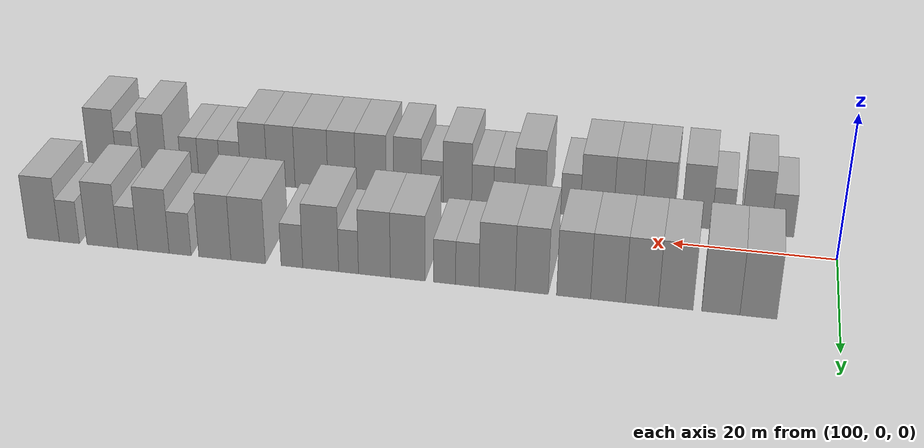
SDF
<sdf version="1.6">
 <world name="default">
  <model name="building_26">
   <static>1</static>
   <pose>109.2234 9.5000 0 0.000000 0.000000 1.570796</pose>
   <link name="link">
    <pose>0 0 4.50 0 0 0</pose>
    <collision name="collision"><geometry><box><size>10.0000 4.2293 9.0000</size></box></geometry></collision>
    <visual name="visual">
     <cast_shadows>0</cast_shadows>
     <geometry><box><size>10.0000 4.2293 9.0000</size></box></geometry>
     <material>
      <script>
       <uri>model://HANNAS_wall/materials/scripts</uri>
       <uri>model://HANNAS_wall/materials/textures</uri>
       <name>vrc/HANNAS_wall</name>
      </script>
     </material>
    </visual>
   </link>
  </model>
  <model name="building_27">
   <static>1</static>
   <pose>113.5331 9.5000 0 0.000000 0.000000 1.570796</pose>
   <link name="link">
    <pose>0 0 4.50 0 0 0</pose>
    <collision name="collision"><geometry><box><size>10.0000 4.3900 9.0000</size></box></geometry></collision>
    <visual name="visual">
     <cast_shadows>0</cast_shadows>
     <geometry><box><size>10.0000 4.3900 9.0000</size></box></geometry>
     <material>
      <script>
       <uri>model://HANNAS_wall/materials/scripts</uri>
       <uri>model://HANNAS_wall/materials/textures</uri>
       <name>vrc/HANNAS_wall</name>
      </script>
     </material>
    </visual>
   </link>
  </model>
  <model name="building_28">
   <static>1</static>
   <pose>118.7385 9.5000 0 0.000000 0.000000 1.570796</pose>
   <link name="link">
    <pose>0 0 4.50 0 0 0</pose>
    <collision name="collision"><geometry><box><size>10.0000 4.0208 9.0000</size></box></geometry></collision>
    <visual name="visual">
     <cast_shadows>0</cast_shadows>
     <geometry><box><size>10.0000 4.0208 9.0000</size></box></geometry>
     <material>
      <script>
       <uri>model://HANNAS_wall/materials/scripts</uri>
       <uri>model://HANNAS_wall/materials/textures</uri>
       <name>vrc/HANNAS_wall</name>
      </script>
     </material>
    </visual>
   </link>
  </model>
  <model name="building_29">
   <static>1</static>
   <pose>122.6874 9.5000 0 0.000000 0.000000 1.570796</pose>
   <link name="link">
    <pose>0 0 4.50 0 0 0</pose>
    <collision name="collision"><geometry><box><size>10.0000 3.8772 9.0000</size></box></geometry></collision>
    <visual name="visual">
     <cast_shadows>0</cast_shadows>
     <geometry><box><size>10.0000 3.8772 9.0000</size></box></geometry>
     <material>
      <script>
       <uri>model://HANNAS_wall/materials/scripts</uri>
       <uri>model://HANNAS_wall/materials/textures</uri>
       <name>vrc/HANNAS_wall</name>
      </script>
     </material>
    </visual>
   </link>
  </model>
  <model name="building_30">
   <static>1</static>
   <pose>126.6650 9.5000 0 0.000000 0.000000 1.570796</pose>
   <link name="link">
    <pose>0 0 4.50 0 0 0</pose>
    <collision name="collision"><geometry><box><size>10.0000 4.0779 9.0000</size></box></geometry></collision>
    <visual name="visual">
     <cast_shadows>0</cast_shadows>
     <geometry><box><size>10.0000 4.0779 9.0000</size></box></geometry>
     <material>
      <script>
       <uri>model://HANNAS_wall/materials/scripts</uri>
       <uri>model://HANNAS_wall/materials/textures</uri>
       <name>vrc/HANNAS_wall</name>
      </script>
     </material>
    </visual>
   </link>
  </model>
  <model name="building_31">
   <static>1</static>
   <pose>130.7236 9.5000 0 0.000000 0.000000 1.570796</pose>
   <link name="link">
    <pose>0 0 4.50 0 0 0</pose>
    <collision name="collision"><geometry><box><size>10.0000 4.0392 9.0000</size></box></geometry></collision>
    <visual name="visual">
     <cast_shadows>0</cast_shadows>
     <geometry><box><size>10.0000 4.0392 9.0000</size></box></geometry>
     <material>
      <script>
       <uri>model://HANNAS_wall/materials/scripts</uri>
       <uri>model://HANNAS_wall/materials/textures</uri>
       <name>vrc/HANNAS_wall</name>
      </script>
     </material>
    </visual>
   </link>
  </model>
  <model name="building_32">
   <static>1</static>
   <pose>135.7183 9.5000 0 0.000000 0.000000 1.570796</pose>
   <link name="link">
    <pose>0 0 4.50 0 0 0</pose>
    <collision name="collision"><geometry><box><size>10.0000 3.9504 9.0000</size></box></geometry></collision>
    <visual name="visual">
     <cast_shadows>0</cast_shadows>
     <geometry><box><size>10.0000 3.9504 9.0000</size></box></geometry>
     <material>
      <script>
       <uri>model://HANNAS_wall/materials/scripts</uri>
       <uri>model://HANNAS_wall/materials/textures</uri>
       <name>vrc/HANNAS_wall</name>
      </script>
     </material>
    </visual>
   </link>
  </model>
  <model name="building_33">
   <static>1</static>
   <pose>139.8712 9.5000 0 0.000000 0.000000 1.570796</pose>
   <link name="link">
    <pose>0 0 4.50 0 0 0</pose>
    <collision name="collision"><geometry><box><size>10.0000 4.3553 9.0000</size></box></geometry></collision>
    <visual name="visual">
     <cast_shadows>0</cast_shadows>
     <geometry><box><size>10.0000 4.3553 9.0000</size></box></geometry>
     <material>
      <script>
       <uri>model://HANNAS_wall/materials/scripts</uri>
       <uri>model://HANNAS_wall/materials/textures</uri>
       <name>vrc/HANNAS_wall</name>
      </script>
     </material>
    </visual>
   </link>
  </model>
  <model name="building_34">
   <static>1</static>
   <pose>143.4770 9.5000 0 0.000000 0.000000 1.570796</pose>
   <link name="link">
    <pose>0 0 3.00 0 0 0</pose>
    <collision name="collision"><geometry><box><size>10.0000 2.8562 6.0000</size></box></geometry></collision>
    <visual name="visual">
     <cast_shadows>0</cast_shadows>
     <geometry><box><size>10.0000 2.8562 6.0000</size></box></geometry>
     <material>
      <script>
       <uri>model://HANNAS_wall/materials/scripts</uri>
       <uri>model://HANNAS_wall/materials/textures</uri>
       <name>vrc/HANNAS_wall</name>
      </script>
     </material>
    </visual>
   </link>
  </model>
  <model name="building_35">
   <static>1</static>
   <pose>146.2581 9.5000 0 0.000000 0.000000 1.570796</pose>
   <link name="link">
    <pose>0 0 3.00 0 0 0</pose>
    <collision name="collision"><geometry><box><size>10.0000 2.7060 6.0000</size></box></geometry></collision>
    <visual name="visual">
     <cast_shadows>0</cast_shadows>
     <geometry><box><size>10.0000 2.7060 6.0000</size></box></geometry>
     <material>
      <script>
       <uri>model://HANNAS_wall/materials/scripts</uri>
       <uri>model://HANNAS_wall/materials/textures</uri>
       <name>vrc/HANNAS_wall</name>
      </script>
     </material>
    </visual>
   </link>
  </model>
  <model name="building_36">
   <static>1</static>
   <pose>150.7458 9.5000 0 0.000000 0.000000 1.570796</pose>
   <link name="link">
    <pose>0 0 4.50 0 0 0</pose>
    <collision name="collision"><geometry><box><size>10.0000 4.2693 9.0000</size></box></geometry></collision>
    <visual name="visual">
     <cast_shadows>0</cast_shadows>
     <geometry><box><size>10.0000 4.2693 9.0000</size></box></geometry>
     <material>
      <script>
       <uri>model://HANNAS_wall/materials/scripts</uri>
       <uri>model://HANNAS_wall/materials/textures</uri>
       <name>vrc/HANNAS_wall</name>
      </script>
     </material>
    </visual>
   </link>
  </model>
  <model name="building_37">
   <static>1</static>
   <pose>154.8557 9.5000 0 0.000000 0.000000 1.570796</pose>
   <link name="link">
    <pose>0 0 4.50 0 0 0</pose>
    <collision name="collision"><geometry><box><size>10.0000 3.9506 9.0000</size></box></geometry></collision>
    <visual name="visual">
     <cast_shadows>0</cast_shadows>
     <geometry><box><size>10.0000 3.9506 9.0000</size></box></geometry>
     <material>
      <script>
       <uri>model://HANNAS_wall/materials/scripts</uri>
       <uri>model://HANNAS_wall/materials/textures</uri>
       <name>vrc/HANNAS_wall</name>
      </script>
     </material>
    </visual>
   </link>
  </model>
  <model name="building_38">
   <static>1</static>
   <pose>158.0639 9.5000 0 0.000000 0.000000 1.570796</pose>
   <link name="link">
    <pose>0 0 3.00 0 0 0</pose>
    <collision name="collision"><geometry><box><size>10.0000 2.4656 6.0000</size></box></geometry></collision>
    <visual name="visual">
     <cast_shadows>0</cast_shadows>
     <geometry><box><size>10.0000 2.4656 6.0000</size></box></geometry>
     <material>
      <script>
       <uri>model://HANNAS_wall/materials/scripts</uri>
       <uri>model://HANNAS_wall/materials/textures</uri>
       <name>vrc/HANNAS_wall</name>
      </script>
     </material>
    </visual>
   </link>
  </model>
  <model name="building_39">
   <static>1</static>
   <pose>161.5466 9.5000 0 0.000000 0.000000 1.570796</pose>
   <link name="link">
    <pose>0 0 4.50 0 0 0</pose>
    <collision name="collision"><geometry><box><size>10.0000 4.4998 9.0000</size></box></geometry></collision>
    <visual name="visual">
     <cast_shadows>0</cast_shadows>
     <geometry><box><size>10.0000 4.4998 9.0000</size></box></geometry>
     <material>
      <script>
       <uri>model://HANNAS_wall/materials/scripts</uri>
       <uri>model://HANNAS_wall/materials/textures</uri>
       <name>vrc/HANNAS_wall</name>
      </script>
     </material>
    </visual>
   </link>
  </model>
  <model name="building_40">
   <static>1</static>
   <pose>165.1599 9.5000 0 0.000000 0.000000 1.570796</pose>
   <link name="link">
    <pose>0 0 3.00 0 0 0</pose>
    <collision name="collision"><geometry><box><size>10.0000 2.7268 6.0000</size></box></geometry></collision>
    <visual name="visual">
     <cast_shadows>0</cast_shadows>
     <geometry><box><size>10.0000 2.7268 6.0000</size></box></geometry>
     <material>
      <script>
       <uri>model://HANNAS_wall/materials/scripts</uri>
       <uri>model://HANNAS_wall/materials/textures</uri>
       <name>vrc/HANNAS_wall</name>
      </script>
     </material>
    </visual>
   </link>
  </model>
  <model name="building_41">
   <static>1</static>
   <pose>170.7164 9.5000 0 0.000000 0.000000 1.570796</pose>
   <link name="link">
    <pose>0 0 4.50 0 0 0</pose>
    <collision name="collision"><geometry><box><size>10.0000 4.3862 9.0000</size></box></geometry></collision>
    <visual name="visual">
     <cast_shadows>0</cast_shadows>
     <geometry><box><size>10.0000 4.3862 9.0000</size></box></geometry>
     <material>
      <script>
       <uri>model://HANNAS_wall/materials/scripts</uri>
       <uri>model://HANNAS_wall/materials/textures</uri>
       <name>vrc/HANNAS_wall</name>
      </script>
     </material>
    </visual>
   </link>
  </model>
  <model name="building_42">
   <static>1</static>
   <pose>174.9634 9.5000 0 0.000000 0.000000 1.570796</pose>
   <link name="link">
    <pose>0 0 4.50 0 0 0</pose>
    <collision name="collision"><geometry><box><size>10.0000 4.1078 9.0000</size></box></geometry></collision>
    <visual name="visual">
     <cast_shadows>0</cast_shadows>
     <geometry><box><size>10.0000 4.1078 9.0000</size></box></geometry>
     <material>
      <script>
       <uri>model://HANNAS_wall/materials/scripts</uri>
       <uri>model://HANNAS_wall/materials/textures</uri>
       <name>vrc/HANNAS_wall</name>
      </script>
     </material>
    </visual>
   </link>
  </model>
  <model name="building_43">
   <static>1</static>
   <pose>179.4335 9.5000 0 0.000000 0.000000 1.570796</pose>
   <link name="link">
    <pose>0 0 3.00 0 0 0</pose>
    <collision name="collision"><geometry><box><size>10.0000 2.8324 6.0000</size></box></geometry></collision>
    <visual name="visual">
     <cast_shadows>0</cast_shadows>
     <geometry><box><size>10.0000 2.8324 6.0000</size></box></geometry>
     <material>
      <script>
       <uri>model://HANNAS_wall/materials/scripts</uri>
       <uri>model://HANNAS_wall/materials/textures</uri>
       <name>vrc/HANNAS_wall</name>
      </script>
     </material>
    </visual>
   </link>
  </model>
  <model name="building_44">
   <static>1</static>
   <pose>182.8956 9.5000 0 0.000000 0.000000 1.570796</pose>
   <link name="link">
    <pose>0 0 4.50 0 0 0</pose>
    <collision name="collision"><geometry><box><size>10.0000 4.0918 9.0000</size></box></geometry></collision>
    <visual name="visual">
     <cast_shadows>0</cast_shadows>
     <geometry><box><size>10.0000 4.0918 9.0000</size></box></geometry>
     <material>
      <script>
       <uri>model://HANNAS_wall/materials/scripts</uri>
       <uri>model://HANNAS_wall/materials/textures</uri>
       <name>vrc/HANNAS_wall</name>
      </script>
     </material>
    </visual>
   </link>
  </model>
  <model name="building_45">
   <static>1</static>
   <pose>186.2342 9.5000 0 0.000000 0.000000 1.570796</pose>
   <link name="link">
    <pose>0 0 3.00 0 0 0</pose>
    <collision name="collision"><geometry><box><size>10.0000 2.5854 6.0000</size></box></geometry></collision>
    <visual name="visual">
     <cast_shadows>0</cast_shadows>
     <geometry><box><size>10.0000 2.5854 6.0000</size></box></geometry>
     <material>
      <script>
       <uri>model://HANNAS_wall/materials/scripts</uri>
       <uri>model://HANNAS_wall/materials/textures</uri>
       <name>vrc/HANNAS_wall</name>
      </script>
     </material>
    </visual>
   </link>
  </model>
  <model name="building_46">
   <static>1</static>
   <pose>189.5580 9.5000 0 0.000000 0.000000 1.570796</pose>
   <link name="link">
    <pose>0 0 4.50 0 0 0</pose>
    <collision name="collision"><geometry><box><size>10.0000 4.0622 9.0000</size></box></geometry></collision>
    <visual name="visual">
     <cast_shadows>0</cast_shadows>
     <geometry><box><size>10.0000 4.0622 9.0000</size></box></geometry>
     <material>
      <script>
       <uri>model://HANNAS_wall/materials/scripts</uri>
       <uri>model://HANNAS_wall/materials/textures</uri>
       <name>vrc/HANNAS_wall</name>
      </script>
     </material>
    </visual>
   </link>
  </model>
  <model name="building_47">
   <static>1</static>
   <pose>193.9170 9.5000 0 0.000000 0.000000 1.570796</pose>
   <link name="link">
    <pose>0 0 3.00 0 0 0</pose>
    <collision name="collision"><geometry><box><size>10.0000 2.6556 6.0000</size></box></geometry></collision>
    <visual name="visual">
     <cast_shadows>0</cast_shadows>
     <geometry><box><size>10.0000 2.6556 6.0000</size></box></geometry>
     <material>
      <script>
       <uri>model://HANNAS_wall/materials/scripts</uri>
       <uri>model://HANNAS_wall/materials/textures</uri>
       <name>vrc/HANNAS_wall</name>
      </script>
     </material>
    </visual>
   </link>
  </model>
  <model name="building_48">
   <static>1</static>
   <pose>197.3718 9.5000 0 0.000000 0.000000 1.570796</pose>
   <link name="link">
    <pose>0 0 4.50 0 0 0</pose>
    <collision name="collision"><geometry><box><size>10.0000 4.2540 9.0000</size></box></geometry></collision>
    <visual name="visual">
     <cast_shadows>0</cast_shadows>
     <geometry><box><size>10.0000 4.2540 9.0000</size></box></geometry>
     <material>
      <script>
       <uri>model://HANNAS_wall/materials/scripts</uri>
       <uri>model://HANNAS_wall/materials/textures</uri>
       <name>vrc/HANNAS_wall</name>
      </script>
     </material>
    </visual>
   </link>
  </model>
  <model name="building_72">
   <static>1</static>
   <pose>106.6339 -9.5000 0 0.000000 0.000000 1.570796</pose>
   <link name="link">
    <pose>0 0 3.00 0 0 0</pose>
    <collision name="collision"><geometry><box><size>10.0000 2.8440 6.0000</size></box></geometry></collision>
    <visual name="visual">
     <cast_shadows>0</cast_shadows>
     <geometry><box><size>10.0000 2.8440 6.0000</size></box></geometry>
     <material>
      <script>
       <uri>model://HANNAS_wall/materials/scripts</uri>
       <uri>model://HANNAS_wall/materials/textures</uri>
       <name>vrc/HANNAS_wall</name>
      </script>
     </material>
    </visual>
   </link>
  </model>
  <model name="building_73">
   <static>1</static>
   <pose>109.8941 -9.5000 0 0.000000 0.000000 1.570796</pose>
   <link name="link">
    <pose>0 0 4.50 0 0 0</pose>
    <collision name="collision"><geometry><box><size>10.0000 3.6765 9.0000</size></box></geometry></collision>
    <visual name="visual">
     <cast_shadows>0</cast_shadows>
     <geometry><box><size>10.0000 3.6765 9.0000</size></box></geometry>
     <material>
      <script>
       <uri>model://HANNAS_wall/materials/scripts</uri>
       <uri>model://HANNAS_wall/materials/textures</uri>
       <name>vrc/HANNAS_wall</name>
      </script>
     </material>
    </visual>
   </link>
  </model>
  <model name="building_74">
   <static>1</static>
   <pose>114.0905 -9.5000 0 0.000000 0.000000 1.570796</pose>
   <link name="link">
    <pose>0 0 3.00 0 0 0</pose>
    <collision name="collision"><geometry><box><size>10.0000 2.7162 6.0000</size></box></geometry></collision>
    <visual name="visual">
     <cast_shadows>0</cast_shadows>
     <geometry><box><size>10.0000 2.7162 6.0000</size></box></geometry>
     <material>
      <script>
       <uri>model://HANNAS_wall/materials/scripts</uri>
       <uri>model://HANNAS_wall/materials/textures</uri>
       <name>vrc/HANNAS_wall</name>
      </script>
     </material>
    </visual>
   </link>
  </model>
  <model name="building_75">
   <static>1</static>
   <pose>117.3584 -9.5000 0 0.000000 0.000000 1.570796</pose>
   <link name="link">
    <pose>0 0 4.50 0 0 0</pose>
    <collision name="collision"><geometry><box><size>10.0000 3.8197 9.0000</size></box></geometry></collision>
    <visual name="visual">
     <cast_shadows>0</cast_shadows>
     <geometry><box><size>10.0000 3.8197 9.0000</size></box></geometry>
     <material>
      <script>
       <uri>model://HANNAS_wall/materials/scripts</uri>
       <uri>model://HANNAS_wall/materials/textures</uri>
       <name>vrc/HANNAS_wall</name>
      </script>
     </material>
    </visual>
   </link>
  </model>
  <model name="building_76">
   <static>1</static>
   <pose>122.2385 -9.5000 0 0.000000 0.000000 1.570796</pose>
   <link name="link">
    <pose>0 0 4.50 0 0 0</pose>
    <collision name="collision"><geometry><box><size>10.0000 3.9403 9.0000</size></box></geometry></collision>
    <visual name="visual">
     <cast_shadows>0</cast_shadows>
     <geometry><box><size>10.0000 3.9403 9.0000</size></box></geometry>
     <material>
      <script>
       <uri>model://HANNAS_wall/materials/scripts</uri>
       <uri>model://HANNAS_wall/materials/textures</uri>
       <name>vrc/HANNAS_wall</name>
      </script>
     </material>
    </visual>
   </link>
  </model>
  <model name="building_77">
   <static>1</static>
   <pose>126.0311 -9.5000 0 0.000000 0.000000 1.570796</pose>
   <link name="link">
    <pose>0 0 4.50 0 0 0</pose>
    <collision name="collision"><geometry><box><size>10.0000 3.6449 9.0000</size></box></geometry></collision>
    <visual name="visual">
     <cast_shadows>0</cast_shadows>
     <geometry><box><size>10.0000 3.6449 9.0000</size></box></geometry>
     <material>
      <script>
       <uri>model://HANNAS_wall/materials/scripts</uri>
       <uri>model://HANNAS_wall/materials/textures</uri>
       <name>vrc/HANNAS_wall</name>
      </script>
     </material>
    </visual>
   </link>
  </model>
  <model name="building_78">
   <static>1</static>
   <pose>129.9895 -9.5000 0 0.000000 0.000000 1.570796</pose>
   <link name="link">
    <pose>0 0 4.50 0 0 0</pose>
    <collision name="collision"><geometry><box><size>10.0000 4.2720 9.0000</size></box></geometry></collision>
    <visual name="visual">
     <cast_shadows>0</cast_shadows>
     <geometry><box><size>10.0000 4.2720 9.0000</size></box></geometry>
     <material>
      <script>
       <uri>model://HANNAS_wall/materials/scripts</uri>
       <uri>model://HANNAS_wall/materials/textures</uri>
       <name>vrc/HANNAS_wall</name>
      </script>
     </material>
    </visual>
   </link>
  </model>
  <model name="building_79">
   <static>1</static>
   <pose>133.4036 -9.5000 0 0.000000 0.000000 1.570796</pose>
   <link name="link">
    <pose>0 0 3.00 0 0 0</pose>
    <collision name="collision"><geometry><box><size>10.0000 2.5561 6.0000</size></box></geometry></collision>
    <visual name="visual">
     <cast_shadows>0</cast_shadows>
     <geometry><box><size>10.0000 2.5561 6.0000</size></box></geometry>
     <material>
      <script>
       <uri>model://HANNAS_wall/materials/scripts</uri>
       <uri>model://HANNAS_wall/materials/textures</uri>
       <name>vrc/HANNAS_wall</name>
      </script>
     </material>
    </visual>
   </link>
  </model>
  <model name="building_80">
   <static>1</static>
   <pose>138.6891 -9.5000 0 0.000000 0.000000 1.570796</pose>
   <link name="link">
    <pose>0 0 4.50 0 0 0</pose>
    <collision name="collision"><geometry><box><size>10.0000 4.0150 9.0000</size></box></geometry></collision>
    <visual name="visual">
     <cast_shadows>0</cast_shadows>
     <geometry><box><size>10.0000 4.0150 9.0000</size></box></geometry>
     <material>
      <script>
       <uri>model://HANNAS_wall/materials/scripts</uri>
       <uri>model://HANNAS_wall/materials/textures</uri>
       <name>vrc/HANNAS_wall</name>
      </script>
     </material>
    </visual>
   </link>
  </model>
  <model name="building_81">
   <static>1</static>
   <pose>142.0562 -9.5000 0 0.000000 0.000000 1.570796</pose>
   <link name="link">
    <pose>0 0 3.00 0 0 0</pose>
    <collision name="collision"><geometry><box><size>10.0000 2.7190 6.0000</size></box></geometry></collision>
    <visual name="visual">
     <cast_shadows>0</cast_shadows>
     <geometry><box><size>10.0000 2.7190 6.0000</size></box></geometry>
     <material>
      <script>
       <uri>model://HANNAS_wall/materials/scripts</uri>
       <uri>model://HANNAS_wall/materials/textures</uri>
       <name>vrc/HANNAS_wall</name>
      </script>
     </material>
    </visual>
   </link>
  </model>
  <model name="building_82">
   <static>1</static>
   <pose>144.8337 -9.5000 0 0.000000 0.000000 1.570796</pose>
   <link name="link">
    <pose>0 0 3.00 0 0 0</pose>
    <collision name="collision"><geometry><box><size>10.0000 2.8360 6.0000</size></box></geometry></collision>
    <visual name="visual">
     <cast_shadows>0</cast_shadows>
     <geometry><box><size>10.0000 2.8360 6.0000</size></box></geometry>
     <material>
      <script>
       <uri>model://HANNAS_wall/materials/scripts</uri>
       <uri>model://HANNAS_wall/materials/textures</uri>
       <name>vrc/HANNAS_wall</name>
      </script>
     </material>
    </visual>
   </link>
  </model>
  <model name="building_83">
   <static>1</static>
   <pose>148.1437 -9.5000 0 0.000000 0.000000 1.570796</pose>
   <link name="link">
    <pose>0 0 4.50 0 0 0</pose>
    <collision name="collision"><geometry><box><size>10.0000 3.7840 9.0000</size></box></geometry></collision>
    <visual name="visual">
     <cast_shadows>0</cast_shadows>
     <geometry><box><size>10.0000 3.7840 9.0000</size></box></geometry>
     <material>
      <script>
       <uri>model://HANNAS_wall/materials/scripts</uri>
       <uri>model://HANNAS_wall/materials/textures</uri>
       <name>vrc/HANNAS_wall</name>
      </script>
     </material>
    </visual>
   </link>
  </model>
  <model name="building_84">
   <static>1</static>
   <pose>151.4761 -9.5000 0 0.000000 0.000000 1.570796</pose>
   <link name="link">
    <pose>0 0 3.00 0 0 0</pose>
    <collision name="collision"><geometry><box><size>10.0000 2.8807 6.0000</size></box></geometry></collision>
    <visual name="visual">
     <cast_shadows>0</cast_shadows>
     <geometry><box><size>10.0000 2.8807 6.0000</size></box></geometry>
     <material>
      <script>
       <uri>model://HANNAS_wall/materials/scripts</uri>
       <uri>model://HANNAS_wall/materials/textures</uri>
       <name>vrc/HANNAS_wall</name>
      </script>
     </material>
    </visual>
   </link>
  </model>
  <model name="building_85">
   <static>1</static>
   <pose>154.7577 -9.5000 0 0.000000 0.000000 1.570796</pose>
   <link name="link">
    <pose>0 0 4.50 0 0 0</pose>
    <collision name="collision"><geometry><box><size>10.0000 3.6824 9.0000</size></box></geometry></collision>
    <visual name="visual">
     <cast_shadows>0</cast_shadows>
     <geometry><box><size>10.0000 3.6824 9.0000</size></box></geometry>
     <material>
      <script>
       <uri>model://HANNAS_wall/materials/scripts</uri>
       <uri>model://HANNAS_wall/materials/textures</uri>
       <name>vrc/HANNAS_wall</name>
      </script>
     </material>
    </visual>
   </link>
  </model>
  <model name="building_86">
   <static>1</static>
   <pose>159.6756 -9.5000 0 0.000000 0.000000 1.570796</pose>
   <link name="link">
    <pose>0 0 4.50 0 0 0</pose>
    <collision name="collision"><geometry><box><size>10.0000 4.1534 9.0000</size></box></geometry></collision>
    <visual name="visual">
     <cast_shadows>0</cast_shadows>
     <geometry><box><size>10.0000 4.1534 9.0000</size></box></geometry>
     <material>
      <script>
       <uri>model://HANNAS_wall/materials/scripts</uri>
       <uri>model://HANNAS_wall/materials/textures</uri>
       <name>vrc/HANNAS_wall</name>
      </script>
     </material>
    </visual>
   </link>
  </model>
  <model name="building_87">
   <static>1</static>
   <pose>163.6173 -9.5000 0 0.000000 0.000000 1.570796</pose>
   <link name="link">
    <pose>0 0 4.50 0 0 0</pose>
    <collision name="collision"><geometry><box><size>10.0000 3.7301 9.0000</size></box></geometry></collision>
    <visual name="visual">
     <cast_shadows>0</cast_shadows>
     <geometry><box><size>10.0000 3.7301 9.0000</size></box></geometry>
     <material>
      <script>
       <uri>model://HANNAS_wall/materials/scripts</uri>
       <uri>model://HANNAS_wall/materials/textures</uri>
       <name>vrc/HANNAS_wall</name>
      </script>
     </material>
    </visual>
   </link>
  </model>
  <model name="building_88">
   <static>1</static>
   <pose>167.7312 -9.5000 0 0.000000 0.000000 1.570796</pose>
   <link name="link">
    <pose>0 0 4.50 0 0 0</pose>
    <collision name="collision"><geometry><box><size>10.0000 4.4978 9.0000</size></box></geometry></collision>
    <visual name="visual">
     <cast_shadows>0</cast_shadows>
     <geometry><box><size>10.0000 4.4978 9.0000</size></box></geometry>
     <material>
      <script>
       <uri>model://HANNAS_wall/materials/scripts</uri>
       <uri>model://HANNAS_wall/materials/textures</uri>
       <name>vrc/HANNAS_wall</name>
      </script>
     </material>
    </visual>
   </link>
  </model>
  <model name="building_89">
   <static>1</static>
   <pose>171.8821 -9.5000 0 0.000000 0.000000 1.570796</pose>
   <link name="link">
    <pose>0 0 4.50 0 0 0</pose>
    <collision name="collision"><geometry><box><size>10.0000 3.8039 9.0000</size></box></geometry></collision>
    <visual name="visual">
     <cast_shadows>0</cast_shadows>
     <geometry><box><size>10.0000 3.8039 9.0000</size></box></geometry>
     <material>
      <script>
       <uri>model://HANNAS_wall/materials/scripts</uri>
       <uri>model://HANNAS_wall/materials/textures</uri>
       <name>vrc/HANNAS_wall</name>
      </script>
     </material>
    </visual>
   </link>
  </model>
  <model name="building_90">
   <static>1</static>
   <pose>175.6131 -9.5000 0 0.000000 0.000000 1.570796</pose>
   <link name="link">
    <pose>0 0 4.50 0 0 0</pose>
    <collision name="collision"><geometry><box><size>10.0000 3.6582 9.0000</size></box></geometry></collision>
    <visual name="visual">
     <cast_shadows>0</cast_shadows>
     <geometry><box><size>10.0000 3.6582 9.0000</size></box></geometry>
     <material>
      <script>
       <uri>model://HANNAS_wall/materials/scripts</uri>
       <uri>model://HANNAS_wall/materials/textures</uri>
       <name>vrc/HANNAS_wall</name>
      </script>
     </material>
    </visual>
   </link>
  </model>
  <model name="building_91">
   <static>1</static>
   <pose>178.8856 -9.5000 0 0.000000 0.000000 1.570796</pose>
   <link name="link">
    <pose>0 0 3.00 0 0 0</pose>
    <collision name="collision"><geometry><box><size>10.0000 2.8868 6.0000</size></box></geometry></collision>
    <visual name="visual">
     <cast_shadows>0</cast_shadows>
     <geometry><box><size>10.0000 2.8868 6.0000</size></box></geometry>
     <material>
      <script>
       <uri>model://HANNAS_wall/materials/scripts</uri>
       <uri>model://HANNAS_wall/materials/textures</uri>
       <name>vrc/HANNAS_wall</name>
      </script>
     </material>
    </visual>
   </link>
  </model>
  <model name="building_92">
   <static>1</static>
   <pose>181.8248 -9.5000 0 0.000000 0.000000 1.570796</pose>
   <link name="link">
    <pose>0 0 3.00 0 0 0</pose>
    <collision name="collision"><geometry><box><size>10.0000 2.9916 6.0000</size></box></geometry></collision>
    <visual name="visual">
     <cast_shadows>0</cast_shadows>
     <geometry><box><size>10.0000 2.9916 6.0000</size></box></geometry>
     <material>
      <script>
       <uri>model://HANNAS_wall/materials/scripts</uri>
       <uri>model://HANNAS_wall/materials/textures</uri>
       <name>vrc/HANNAS_wall</name>
      </script>
     </material>
    </visual>
   </link>
  </model>
  <model name="building_93">
   <static>1</static>
   <pose>184.5502 -9.5000 0 0.000000 0.000000 1.570796</pose>
   <link name="link">
    <pose>0 0 3.00 0 0 0</pose>
    <collision name="collision"><geometry><box><size>10.0000 2.4592 6.0000</size></box></geometry></collision>
    <visual name="visual">
     <cast_shadows>0</cast_shadows>
     <geometry><box><size>10.0000 2.4592 6.0000</size></box></geometry>
     <material>
      <script>
       <uri>model://HANNAS_wall/materials/scripts</uri>
       <uri>model://HANNAS_wall/materials/textures</uri>
       <name>vrc/HANNAS_wall</name>
      </script>
     </material>
    </visual>
   </link>
  </model>
  <model name="building_94">
   <static>1</static>
   <pose>189.6130 -9.5000 0 0.000000 0.000000 1.570796</pose>
   <link name="link">
    <pose>0 0 4.50 0 0 0</pose>
    <collision name="collision"><geometry><box><size>10.0000 3.6665 9.0000</size></box></geometry></collision>
    <visual name="visual">
     <cast_shadows>0</cast_shadows>
     <geometry><box><size>10.0000 3.6665 9.0000</size></box></geometry>
     <material>
      <script>
       <uri>model://HANNAS_wall/materials/scripts</uri>
       <uri>model://HANNAS_wall/materials/textures</uri>
       <name>vrc/HANNAS_wall</name>
      </script>
     </material>
    </visual>
   </link>
  </model>
  <model name="building_95">
   <static>1</static>
   <pose>193.6530 -9.5000 0 0.000000 0.000000 1.570796</pose>
   <link name="link">
    <pose>0 0 3.00 0 0 0</pose>
    <collision name="collision"><geometry><box><size>10.0000 2.4134 6.0000</size></box></geometry></collision>
    <visual name="visual">
     <cast_shadows>0</cast_shadows>
     <geometry><box><size>10.0000 2.4134 6.0000</size></box></geometry>
     <material>
      <script>
       <uri>model://HANNAS_wall/materials/scripts</uri>
       <uri>model://HANNAS_wall/materials/textures</uri>
       <name>vrc/HANNAS_wall</name>
      </script>
     </material>
    </visual>
   </link>
  </model>
  <model name="building_96">
   <static>1</static>
   <pose>196.8693 -9.5000 0 0.000000 0.000000 1.570796</pose>
   <link name="link">
    <pose>0 0 4.50 0 0 0</pose>
    <collision name="collision"><geometry><box><size>10.0000 4.0192 9.0000</size></box></geometry></collision>
    <visual name="visual">
     <cast_shadows>0</cast_shadows>
     <geometry><box><size>10.0000 4.0192 9.0000</size></box></geometry>
     <material>
      <script>
       <uri>model://HANNAS_wall/materials/scripts</uri>
       <uri>model://HANNAS_wall/materials/textures</uri>
       <name>vrc/HANNAS_wall</name>
      </script>
     </material>
    </visual>
   </link>
  </model>
 </world>
</sdf>
